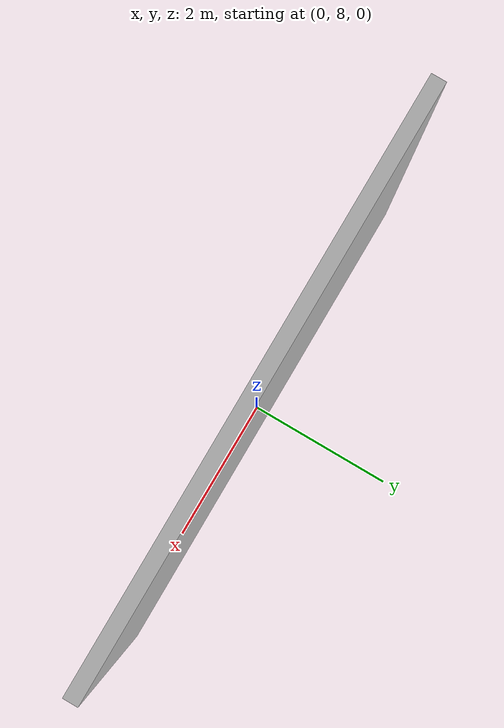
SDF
<?xml version="1.0"?>
<sdf version="1.6">
  <world name="ray_bundle_single_wall">
    <gravity>0 0 0</gravity>
    <physics name="default_physics" type="ode">
      <max_step_size>0.001</max_step_size>
      <real_time_factor>1.0</real_time_factor>
      <real_time_update_rate>1000</real_time_update_rate>
    </physics>
    <scene>
      <ambient>0.2 0.2 0.2 1</ambient>
      <background>0.05 0.05 0.05 1</background>
      <shadows>false</shadows>
    </scene>

    <!-- The finite wall is the world's only collision. At y=8 m its limited
         width and height guarantee both hits and misses for a Mid-360 bundle. -->
    <model name="single_wall">
      <static>true</static>
      <pose>0 8 0 0 0 0</pose>
      <link name="wall_link">
        <collision name="wall_collision">
          <geometry>
            <box>
              <size>8 0.2 8</size>
            </box>
          </geometry>
          <surface>
            <contact>
              <collide_without_contact>true</collide_without_contact>
            </contact>
          </surface>
        </collision>
        <visual name="wall_visual">
          <geometry>
            <box>
              <size>8 0.2 8</size>
            </box>
          </geometry>
          <material>
            <ambient>0.7 0.7 0.7 1</ambient>
            <diffuse>0.7 0.7 0.7 1</diffuse>
          </material>
        </visual>
      </link>
    </model>
  </world>
</sdf>
